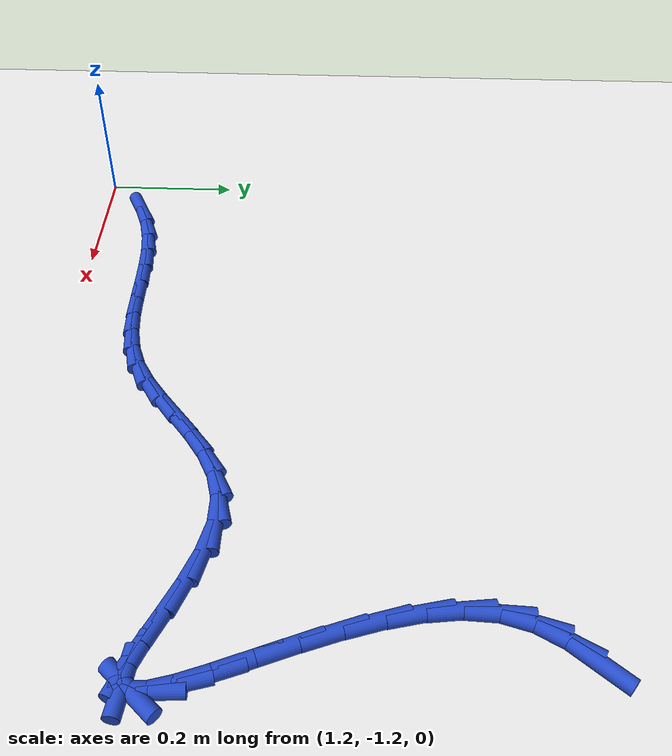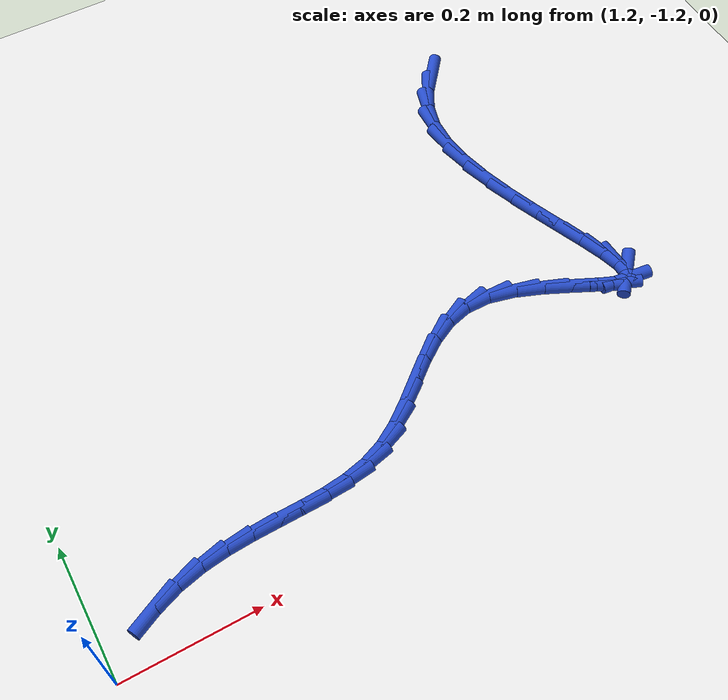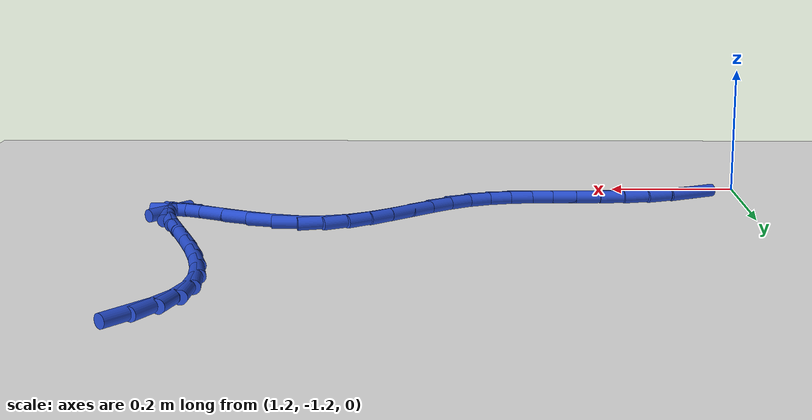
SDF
<sdf version="1.6">
 <world name="default">
  <model name="ground_plane">
   <static>1</static>
   <link name="link">
    <collision name="collision">
     <geometry><plane><normal>0 0 1</normal><size>100 100</size></plane></geometry>
     <surface><friction><ode><mu>100</mu><mu2>50</mu2></ode></friction></surface>
    </collision>
    <visual name="visual">
     <cast_shadows>0</cast_shadows>
     <geometry><plane><normal>0 0 1</normal><size>100 100</size></plane></geometry>
     <material>
      <script><uri>file://media/materials/scripts/gazebo.material</uri><name>Gazebo/WhiteGlow</name></script>
     </material>
    </visual>
   </link>
  </model>
  <model name="line">
   <link name="link_138">
    <pose>2.052039956990903 -0.5203124537060916 0.01 0 1.57 0.8820815445916335</pose>
    <collision name="collision">
     <geometry><cylinder><radius>0.01</radius><length>0.08</length></cylinder></geometry>
    </collision>
    <visual name="visual">
     <material>
      <script><name>Gazebo/Blue</name><uri>file://media/materials/scripts/gazebo.material</uri></script>
     </material>
     <geometry><cylinder><radius>0.01</radius><length>0.08</length></cylinder></geometry>
    </visual>
   </link>
   <link name="link_139">
    <pose>2.027790473114437 -0.5497708361880851 0.01 0 1.57 1.0567130821187138</pose>
    <collision name="collision">
     <geometry><cylinder><radius>0.01</radius><length>0.08</length></cylinder></geometry>
    </collision>
    <visual name="visual">
     <material>
      <script><name>Gazebo/Blue</name><uri>file://media/materials/scripts/gazebo.material</uri></script>
     </material>
     <geometry><cylinder><radius>0.01</radius><length>0.08</length></cylinder></geometry>
    </visual>
   </link>
   <link name="link_140">
    <pose>2.00919552514208 -0.5826978765265194 0.01 0 1.57 1.2923156910678246</pose>
    <collision name="collision">
     <geometry><cylinder><radius>0.01</radius><length>0.08</length></cylinder></geometry>
    </collision>
    <visual name="visual">
     <material>
      <script><name>Gazebo/Blue</name><uri>file://media/materials/scripts/gazebo.material</uri></script>
     </material>
     <geometry><cylinder><radius>0.01</radius><length>0.08</length></cylinder></geometry>
    </visual>
   </link>
   <link name="link_141">
    <pose>1.9985221144625842 -0.6200292358909445 0.01 0 1.57 1.5282975367332445</pose>
    <collision name="collision">
     <geometry><cylinder><radius>0.01</radius><length>0.08</length></cylinder></geometry>
    </collision>
    <visual name="visual">
     <material>
      <script><name>Gazebo/Blue</name><uri>file://media/materials/scripts/gazebo.material</uri></script>
     </material>
     <geometry><cylinder><radius>0.01</radius><length>0.08</length></cylinder></geometry>
    </visual>
   </link>
   <link name="link_142">
    <pose>1.9967402433336836 -0.6619315635407003 0.01 0 1.57 -1.4472449132696819</pose>
    <collision name="collision">
     <geometry><cylinder><radius>0.01</radius><length>0.08</length></cylinder></geometry>
    </collision>
    <visual name="visual">
     <material>
      <script><name>Gazebo/Blue</name><uri>file://media/materials/scripts/gazebo.material</uri></script>
     </material>
     <geometry><cylinder><radius>0.01</radius><length>0.08</length></cylinder></geometry>
    </visual>
   </link>
   <link name="link_143">
    <pose>2.0023503392350546 -0.7071072576249561 0.01 0 1.57 -1.336286187019776</pose>
    <collision name="collision">
     <geometry><cylinder><radius>0.01</radius><length>0.08</length></cylinder></geometry>
    </collision>
    <visual name="visual">
     <material>
      <script><name>Gazebo/Blue</name><uri>file://media/materials/scripts/gazebo.material</uri></script>
     </material>
     <geometry><cylinder><radius>0.01</radius><length>0.08</length></cylinder></geometry>
    </visual>
   </link>
   <link name="link_144">
    <pose>2.013575864929128 -0.7540944994008454 0.01 0 1.57 -1.2626926187252985</pose>
    <collision name="collision">
     <geometry><cylinder><radius>0.01</radius><length>0.08</length></cylinder></geometry>
    </collision>
    <visual name="visual">
     <material>
      <script><name>Gazebo/Blue</name><uri>file://media/materials/scripts/gazebo.material</uri></script>
     </material>
     <geometry><cylinder><radius>0.01</radius><length>0.08</length></cylinder></geometry>
    </visual>
   </link>
   <link name="link_145">
    <pose>2.028640283178335 -0.8014314701254979 0.01 0 1.57 -1.2159680283037344</pose>
    <collision name="collision">
     <geometry><cylinder><radius>0.01</radius><length>0.08</length></cylinder></geometry>
    </collision>
    <visual name="visual">
     <material>
      <script><name>Gazebo/Blue</name><uri>file://media/materials/scripts/gazebo.material</uri></script>
     </material>
     <geometry><cylinder><radius>0.01</radius><length>0.08</length></cylinder></geometry>
    </visual>
   </link>
   <link name="link_146">
    <pose>2.045767056745106 -0.8476563510560465 0.01 0 1.57 -1.1912342615189033</pose>
    <collision name="collision">
     <geometry><cylinder><radius>0.01</radius><length>0.08</length></cylinder></geometry>
    </collision>
    <visual name="visual">
     <material>
      <script><name>Gazebo/Blue</name><uri>file://media/materials/scripts/gazebo.material</uri></script>
     </material>
     <geometry><cylinder><radius>0.01</radius><length>0.08</length></cylinder></geometry>
    </visual>
   </link>
   <link name="link_147">
    <pose>2.0631796483918716 -0.8913073234496237 0.01 0 1.57 -1.1886421072848248</pose>
    <collision name="collision">
     <geometry><cylinder><radius>0.01</radius><length>0.08</length></cylinder></geometry>
    </collision>
    <visual name="visual">
     <material>
      <script><name>Gazebo/Blue</name><uri>file://media/materials/scripts/gazebo.material</uri></script>
     </material>
     <geometry><cylinder><radius>0.01</radius><length>0.08</length></cylinder></geometry>
    </visual>
   </link>
   <link name="link_148">
    <pose>2.079101520881062 -0.930922568563362 0.01 0 1.57 -1.215615698956101</pose>
    <collision name="collision">
     <geometry><cylinder><radius>0.01</radius><length>0.08</length></cylinder></geometry>
    </collision>
    <visual name="visual">
     <material>
      <script><name>Gazebo/Blue</name><uri>file://media/materials/scripts/gazebo.material</uri></script>
     </material>
     <geometry><cylinder><radius>0.01</radius><length>0.08</length></cylinder></geometry>
    </visual>
   </link>
   <link name="link_149">
    <pose>2.091756136975109 -0.9650402676543921 0.01 0 1.57 -1.2975660808313074</pose>
    <collision name="collision">
     <geometry><cylinder><radius>0.01</radius><length>0.08</length></cylinder></geometry>
    </collision>
    <visual name="visual">
     <material>
      <script><name>Gazebo/Blue</name><uri>file://media/materials/scripts/gazebo.material</uri></script>
     </material>
     <geometry><cylinder><radius>0.01</radius><length>0.08</length></cylinder></geometry>
    </visual>
   </link>
   <link name="link_150">
    <pose>2.0993669594364412 -0.9921986019798464 0.01 0 1.57 -1.5286328671971219</pose>
    <collision name="collision">
     <geometry><cylinder><radius>0.01</radius><length>0.08</length></cylinder></geometry>
    </collision>
    <visual name="visual">
     <material>
      <script><name>Gazebo/Blue</name><uri>file://media/materials/scripts/gazebo.material</uri></script>
     </material>
     <geometry><cylinder><radius>0.01</radius><length>0.08</length></cylinder></geometry>
    </visual>
   </link>
   <link name="link_151">
    <pose>2.1001574510274907 -1.010935752796857 0.01 0 1.57 0.8482049458142454</pose>
    <collision name="collision">
     <geometry><cylinder><radius>0.01</radius><length>0.08</length></cylinder></geometry>
    </collision>
    <visual name="visual">
     <material>
      <script><name>Gazebo/Blue</name><uri>file://media/materials/scripts/gazebo.material</uri></script>
     </material>
     <geometry><cylinder><radius>0.01</radius><length>0.08</length></cylinder></geometry>
    </visual>
   </link>
   <link name="link_152">
    <pose>2.092351074510688 -1.0197899013625564 0.01 0 1.57 -0.1203373218309197</pose>
    <collision name="collision">
     <geometry><cylinder><radius>0.01</radius><length>0.08</length></cylinder></geometry>
    </collision>
    <visual name="visual">
     <material>
      <script><name>Gazebo/Blue</name><uri>file://media/materials/scripts/gazebo.material</uri></script>
     </material>
     <geometry><cylinder><radius>0.01</radius><length>0.08</length></cylinder></geometry>
    </visual>
   </link>
   <link name="link_153">
    <pose>2.07442747140876 -1.0176225510023384 0.01 0 1.57 -0.3921475620140867</pose>
    <collision name="collision">
     <geometry><cylinder><radius>0.01</radius><length>0.08</length></cylinder></geometry>
    </collision>
    <visual name="visual">
     <material>
      <script><name>Gazebo/Blue</name><uri>file://media/materials/scripts/gazebo.material</uri></script>
     </material>
     <geometry><cylinder><radius>0.01</radius><length>0.08</length></cylinder></geometry>
    </visual>
   </link>
   <link name="link_154">
    <pose>2.047343275702516 -1.0064214061508843 0.01 0 1.57 -0.4528542417985146</pose>
    <collision name="collision">
     <geometry><cylinder><radius>0.01</radius><length>0.08</length></cylinder></geometry>
    </collision>
    <visual name="visual">
     <material>
      <script><name>Gazebo/Blue</name><uri>file://media/materials/scripts/gazebo.material</uri></script>
     </material>
     <geometry><cylinder><radius>0.01</radius><length>0.08</length></cylinder></geometry>
    </visual>
   </link>
   <link name="link_155">
    <pose>2.0134435116920657 -0.9899264524588176 0.01 0 1.57 -0.4394164668992957</pose>
    <collision name="collision">
     <geometry><cylinder><radius>0.01</radius><length>0.08</length></cylinder></geometry>
    </collision>
    <visual name="visual">
     <material>
      <script><name>Gazebo/Blue</name><uri>file://media/materials/scripts/gazebo.material</uri></script>
     </material>
     <geometry><cylinder><radius>0.01</radius><length>0.08</length></cylinder></geometry>
    </visual>
   </link>
   <link name="link_156">
    <pose>1.9750885167124483 -0.9718970020896965 0.01 0 1.57 -0.3724820340665443</pose>
    <collision name="collision">
     <geometry><cylinder><radius>0.01</radius><length>0.08</length></cylinder></geometry>
    </collision>
    <visual name="visual">
     <material>
      <script><name>Gazebo/Blue</name><uri>file://media/materials/scripts/gazebo.material</uri></script>
     </material>
     <geometry><cylinder><radius>0.01</radius><length>0.08</length></cylinder></geometry>
    </visual>
   </link>
   <link name="link_157">
    <pose>1.9346386280987027 -0.9560923672070801 0.01 0 1.57 -0.23968775889436866</pose>
    <collision name="collision">
     <geometry><cylinder><radius>0.01</radius><length>0.08</length></cylinder></geometry>
    </collision>
    <visual name="visual">
     <material>
      <script><name>Gazebo/Blue</name><uri>file://media/materials/scripts/gazebo.material</uri></script>
     </material>
     <geometry><cylinder><radius>0.01</radius><length>0.08</length></cylinder></geometry>
    </visual>
   </link>
   <link name="link_158">
    <pose>1.8944541831858694 -0.9462718599745271 0.01 0 1.57 -0.009665923989786135</pose>
    <collision name="collision">
     <geometry><cylinder><radius>0.01</radius><length>0.08</length></cylinder></geometry>
    </collision>
    <visual name="visual">
     <material>
      <script><name>Gazebo/Blue</name><uri>file://media/materials/scripts/gazebo.material</uri></script>
     </material>
     <geometry><cylinder><radius>0.01</radius><length>0.08</length></cylinder></geometry>
    </visual>
   </link>
   <link name="link_159">
    <pose>1.8567512537574111 -0.945907414974366 0.01 0 1.57 0.25690822490478965</pose>
    <collision name="collision">
     <geometry><cylinder><radius>0.01</radius><length>0.08</length></cylinder></geometry>
    </collision>
    <visual name="visual">
     <material>
      <script><name>Gazebo/Blue</name><uri>file://media/materials/scripts/gazebo.material</uri></script>
     </material>
     <geometry><cylinder><radius>0.01</radius><length>0.08</length></cylinder></geometry>
    </visual>
   </link>
   <link name="link_160">
    <pose>1.8220194885249608 -0.9550319248198417 0.01 0 1.57 0.4679757183765426</pose>
    <collision name="collision">
     <geometry><cylinder><radius>0.01</radius><length>0.08</length></cylinder></geometry>
    </collision>
    <visual name="visual">
     <material>
      <script><name>Gazebo/Blue</name><uri>file://media/materials/scripts/gazebo.material</uri></script>
     </material>
     <geometry><cylinder><radius>0.01</radius><length>0.08</length></cylinder></geometry>
    </visual>
   </link>
   <link name="link_161">
    <pose>1.7896108316382124 -0.9714119698854612 0.01 0 1.57 0.6071078332502144</pose>
    <collision name="collision">
     <geometry><cylinder><radius>0.01</radius><length>0.08</length></cylinder></geometry>
    </collision>
    <visual name="visual">
     <material>
      <script><name>Gazebo/Blue</name><uri>file://media/materials/scripts/gazebo.material</uri></script>
     </material>
     <geometry><cylinder><radius>0.01</radius><length>0.08</length></cylinder></geometry>
    </visual>
   </link>
   <link name="link_162">
    <pose>1.758857163026835 -0.9927741625356502 0.01 0 1.57 0.6799937205336888</pose>
    <collision name="collision">
     <geometry><cylinder><radius>0.01</radius><length>0.08</length></cylinder></geometry>
    </collision>
    <visual name="visual">
     <material>
      <script><name>Gazebo/Blue</name><uri>file://media/materials/scripts/gazebo.material</uri></script>
     </material>
     <geometry><cylinder><radius>0.01</radius><length>0.08</length></cylinder></geometry>
    </visual>
   </link>
   <link name="link_163">
    <pose>1.729090362620499 -1.0168451151348326 0.01 0 1.57 0.6940621452780488</pose>
    <collision name="collision">
     <geometry><cylinder><radius>0.01</radius><length>0.08</length></cylinder></geometry>
    </collision>
    <visual name="visual">
     <material>
      <script><name>Gazebo/Blue</name><uri>file://media/materials/scripts/gazebo.material</uri></script>
     </material>
     <geometry><cylinder><radius>0.01</radius><length>0.08</length></cylinder></geometry>
    </visual>
   </link>
   <link name="link_164">
    <pose>1.699642310348873 -1.0413514400474344 0.01 0 1.57 0.6503439641491663</pose>
    <collision name="collision">
     <geometry><cylinder><radius>0.01</radius><length>0.08</length></cylinder></geometry>
    </collision>
    <visual name="visual">
     <material>
      <script><name>Gazebo/Blue</name><uri>file://media/materials/scripts/gazebo.material</uri></script>
     </material>
     <geometry><cylinder><radius>0.01</radius><length>0.08</length></cylinder></geometry>
    </visual>
   </link>
   <link name="link_165">
    <pose>1.6698448861416264 -1.06401974963788 0.01 0 1.57 0.5420394852008176</pose>
    <collision name="collision">
     <geometry><cylinder><radius>0.01</radius><length>0.08</length></cylinder></geometry>
    </collision>
    <visual name="visual">
     <material>
      <script><name>Gazebo/Blue</name><uri>file://media/materials/scripts/gazebo.material</uri></script>
     </material>
     <geometry><cylinder><radius>0.01</radius><length>0.08</length></cylinder></geometry>
    </visual>
   </link>
   <link name="link_166">
    <pose>1.6390299699284288 -1.082576656270596 0.01 0 1.57 0.3759559104573173</pose>
    <collision name="collision">
     <geometry><cylinder><radius>0.01</radius><length>0.08</length></cylinder></geometry>
    </collision>
    <visual name="visual">
     <material>
      <script><name>Gazebo/Blue</name><uri>file://media/materials/scripts/gazebo.material</uri></script>
     </material>
     <geometry><cylinder><radius>0.01</radius><length>0.08</length></cylinder></geometry>
    </visual>
   </link>
   <link name="link_167">
    <pose>1.6066789550696177 -1.0953466051326164 0.01 0 1.57 0.22391551671860455</pose>
    <collision name="collision">
     <geometry><cylinder><radius>0.01</radius><length>0.08</length></cylinder></geometry>
    </collision>
    <visual name="visual">
     <material>
      <script><name>Gazebo/Blue</name><uri>file://media/materials/scripts/gazebo.material</uri></script>
     </material>
     <geometry><cylinder><radius>0.01</radius><length>0.08</length></cylinder></geometry>
    </visual>
   </link>
   <link name="link_168">
    <pose>1.5728713832267303 -1.1030457508758018 0.01 0 1.57 0.11205936744447037</pose>
    <collision name="collision">
     <geometry><cylinder><radius>0.01</radius><length>0.08</length></cylinder></geometry>
    </collision>
    <visual name="visual">
     <material>
      <script><name>Gazebo/Blue</name><uri>file://media/materials/scripts/gazebo.material</uri></script>
     </material>
     <geometry><cylinder><radius>0.01</radius><length>0.08</length></cylinder></geometry>
    </visual>
   </link>
   <link name="link_169">
    <pose>1.5378363567849764 -1.1069882700767675 0.01 0 1.57 0.04160596711155312</pose>
    <collision name="collision">
     <geometry><cylinder><radius>0.01</radius><length>0.08</length></cylinder></geometry>
    </collision>
    <visual name="visual">
     <material>
      <script><name>Gazebo/Blue</name><uri>file://media/materials/scripts/gazebo.material</uri></script>
     </material>
     <geometry><cylinder><radius>0.01</radius><length>0.08</length></cylinder></geometry>
    </visual>
   </link>
   <link name="link_170">
    <pose>1.501802978129564 -1.1084883393121288 0.01 0 1.57 0.010102082761203552</pose>
    <collision name="collision">
     <geometry><cylinder><radius>0.01</radius><length>0.08</length></cylinder></geometry>
    </collision>
    <visual name="visual">
     <material>
      <script><name>Gazebo/Blue</name><uri>file://media/materials/scripts/gazebo.material</uri></script>
     </material>
     <geometry><cylinder><radius>0.01</radius><length>0.08</length></cylinder></geometry>
    </visual>
   </link>
   <link name="link_171">
    <pose>1.465000349645706 -1.1088601351585012 0.01 0 1.57 0.014933479428638919</pose>
    <collision name="collision">
     <geometry><cylinder><radius>0.01</radius><length>0.08</length></cylinder></geometry>
    </collision>
    <visual name="visual">
     <material>
      <script><name>Gazebo/Blue</name><uri>file://media/materials/scripts/gazebo.material</uri></script>
     </material>
     <geometry><cylinder><radius>0.01</radius><length>0.08</length></cylinder></geometry>
    </visual>
   </link>
   <link name="link_172">
    <pose>1.4276575737186104 -1.1094178341924987 0.01 0 1.57 0.05459562429152575</pose>
    <collision name="collision">
     <geometry><cylinder><radius>0.01</radius><length>0.08</length></cylinder></geometry>
    </collision>
    <visual name="visual">
     <material>
      <script><name>Gazebo/Blue</name><uri>file://media/materials/scripts/gazebo.material</uri></script>
     </material>
     <geometry><cylinder><radius>0.01</radius><length>0.08</length></cylinder></geometry>
    </visual>
   </link>
   <link name="link_173">
    <pose>1.3900037527334865 -1.111475612990737 0.01 0 1.57 0.1283989318152729</pose>
    <collision name="collision">
     <geometry><cylinder><radius>0.01</radius><length>0.08</length></cylinder></geometry>
    </collision>
    <visual name="visual">
     <material>
      <script><name>Gazebo/Blue</name><uri>file://media/materials/scripts/gazebo.material</uri></script>
     </material>
     <geometry><cylinder><radius>0.01</radius><length>0.08</length></cylinder></geometry>
    </visual>
   </link>
   <link name="link_174">
    <pose>1.352267989075545 -1.1163476481298316 0.01 0 1.57 0.2350217716611488</pose>
    <collision name="collision">
     <geometry><cylinder><radius>0.01</radius><length>0.08</length></cylinder></geometry>
    </collision>
    <visual name="visual">
     <material>
      <script><name>Gazebo/Blue</name><uri>file://media/materials/scripts/gazebo.material</uri></script>
     </material>
     <geometry><cylinder><radius>0.01</radius><length>0.08</length></cylinder></geometry>
    </visual>
   </link>
   <link name="link_175">
    <pose>1.3146793851299934 -1.125348116186397 0.01 0 1.57 0.35991574888336875</pose>
    <collision name="collision">
     <geometry><cylinder><radius>0.01</radius><length>0.08</length></cylinder></geometry>
    </collision>
    <visual name="visual">
     <material>
      <script><name>Gazebo/Blue</name><uri>file://media/materials/scripts/gazebo.material</uri></script>
     </material>
     <geometry><cylinder><radius>0.01</radius><length>0.08</length></cylinder></geometry>
    </visual>
   </link>
   <link name="link_176">
    <pose>1.2774703510585985 -1.1393501237783243 0.01 0 1.57 0.44894143752675114</pose>
    <collision name="collision">
     <geometry><cylinder><radius>0.01</radius><length>0.08</length></cylinder></geometry>
    </collision>
    <visual name="visual">
     <material>
      <script><name>Gazebo/Blue</name><uri>file://media/materials/scripts/gazebo.material</uri></script>
     </material>
     <geometry><cylinder><radius>0.01</radius><length>0.08</length></cylinder></geometry>
    </visual>
   </link>
  </model>
 </world>
</sdf>
